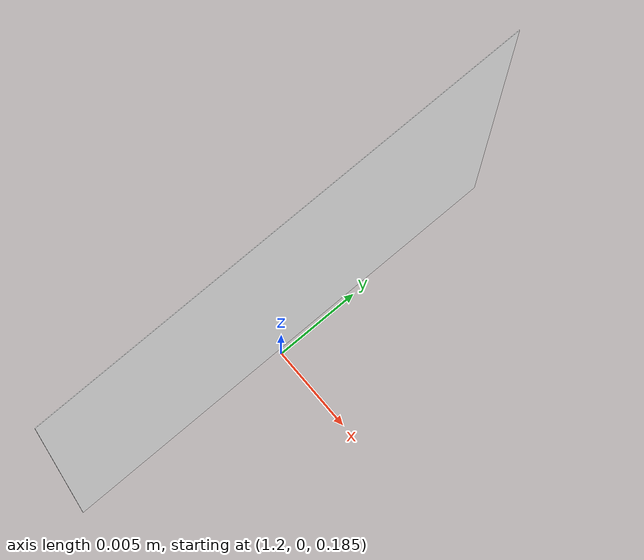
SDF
<sdf version="1.8">
 <world name="aruco_arena">
  <model name="aruco_upright_1">
   <static>true</static>
   <pose>1.2 0 0.20 0 -1.57079632679 0</pose>
   <link name="tag">
    <visual name="white_margin">
     <geometry><plane><normal>0 0 1</normal><size>0.0266666667 0.0266666667</size></plane></geometry>
     <cast_shadows>false</cast_shadows>
     <material><ambient>1 1 1 1</ambient><diffuse>1 1 1 1</diffuse><specular>0 0 0 1</specular></material>
    </visual>
    <visual name="black_0_0">
     <pose>-0.0083333333 0.0083333333 1e-05 0 0 0</pose>
     <geometry><plane><normal>0 0 1</normal><size>0.0033333333 0.0033333333</size></plane></geometry>
     <cast_shadows>false</cast_shadows>
     <material><ambient>0 0 0 1</ambient><diffuse>0 0 0 1</diffuse><specular>0 0 0 1</specular></material>
    </visual>
    <visual name="black_0_1">
     <pose>-0.0050000000 0.0083333333 1e-05 0 0 0</pose>
     <geometry><plane><normal>0 0 1</normal><size>0.0033333333 0.0033333333</size></plane></geometry>
     <cast_shadows>false</cast_shadows>
     <material><ambient>0 0 0 1</ambient><diffuse>0 0 0 1</diffuse><specular>0 0 0 1</specular></material>
    </visual>
    <visual name="black_0_2">
     <pose>-0.0016666667 0.0083333333 1e-05 0 0 0</pose>
     <geometry><plane><normal>0 0 1</normal><size>0.0033333333 0.0033333333</size></plane></geometry>
     <cast_shadows>false</cast_shadows>
     <material><ambient>0 0 0 1</ambient><diffuse>0 0 0 1</diffuse><specular>0 0 0 1</specular></material>
    </visual>
    <visual name="black_0_3">
     <pose>0.0016666667 0.0083333333 1e-05 0 0 0</pose>
     <geometry><plane><normal>0 0 1</normal><size>0.0033333333 0.0033333333</size></plane></geometry>
     <cast_shadows>false</cast_shadows>
     <material><ambient>0 0 0 1</ambient><diffuse>0 0 0 1</diffuse><specular>0 0 0 1</specular></material>
    </visual>
    <visual name="black_0_4">
     <pose>0.0050000000 0.0083333333 1e-05 0 0 0</pose>
     <geometry><plane><normal>0 0 1</normal><size>0.0033333333 0.0033333333</size></plane></geometry>
     <cast_shadows>false</cast_shadows>
     <material><ambient>0 0 0 1</ambient><diffuse>0 0 0 1</diffuse><specular>0 0 0 1</specular></material>
    </visual>
    <visual name="black_0_5">
     <pose>0.0083333333 0.0083333333 1e-05 0 0 0</pose>
     <geometry><plane><normal>0 0 1</normal><size>0.0033333333 0.0033333333</size></plane></geometry>
     <cast_shadows>false</cast_shadows>
     <material><ambient>0 0 0 1</ambient><diffuse>0 0 0 1</diffuse><specular>0 0 0 1</specular></material>
    </visual>
    <visual name="black_1_0">
     <pose>-0.0083333333 0.0050000000 1e-05 0 0 0</pose>
     <geometry><plane><normal>0 0 1</normal><size>0.0033333333 0.0033333333</size></plane></geometry>
     <cast_shadows>false</cast_shadows>
     <material><ambient>0 0 0 1</ambient><diffuse>0 0 0 1</diffuse><specular>0 0 0 1</specular></material>
    </visual>
    <visual name="black_1_1">
     <pose>-0.0050000000 0.0050000000 1e-05 0 0 0</pose>
     <geometry><plane><normal>0 0 1</normal><size>0.0033333333 0.0033333333</size></plane></geometry>
     <cast_shadows>false</cast_shadows>
     <material><ambient>0 0 0 1</ambient><diffuse>0 0 0 1</diffuse><specular>0 0 0 1</specular></material>
    </visual>
    <visual name="black_1_2">
     <pose>-0.0016666667 0.0050000000 1e-05 0 0 0</pose>
     <geometry><plane><normal>0 0 1</normal><size>0.0033333333 0.0033333333</size></plane></geometry>
     <cast_shadows>false</cast_shadows>
     <material><ambient>0 0 0 1</ambient><diffuse>0 0 0 1</diffuse><specular>0 0 0 1</specular></material>
    </visual>
    <visual name="black_1_3">
     <pose>0.0016666667 0.0050000000 1e-05 0 0 0</pose>
     <geometry><plane><normal>0 0 1</normal><size>0.0033333333 0.0033333333</size></plane></geometry>
     <cast_shadows>false</cast_shadows>
     <material><ambient>0 0 0 1</ambient><diffuse>0 0 0 1</diffuse><specular>0 0 0 1</specular></material>
    </visual>
    <visual name="black_1_4">
     <pose>0.0050000000 0.0050000000 1e-05 0 0 0</pose>
     <geometry><plane><normal>0 0 1</normal><size>0.0033333333 0.0033333333</size></plane></geometry>
     <cast_shadows>false</cast_shadows>
     <material><ambient>0 0 0 1</ambient><diffuse>0 0 0 1</diffuse><specular>0 0 0 1</specular></material>
    </visual>
    <visual name="black_1_5">
     <pose>0.0083333333 0.0050000000 1e-05 0 0 0</pose>
     <geometry><plane><normal>0 0 1</normal><size>0.0033333333 0.0033333333</size></plane></geometry>
     <cast_shadows>false</cast_shadows>
     <material><ambient>0 0 0 1</ambient><diffuse>0 0 0 1</diffuse><specular>0 0 0 1</specular></material>
    </visual>
    <visual name="black_2_0">
     <pose>-0.0083333333 0.0016666667 1e-05 0 0 0</pose>
     <geometry><plane><normal>0 0 1</normal><size>0.0033333333 0.0033333333</size></plane></geometry>
     <cast_shadows>false</cast_shadows>
     <material><ambient>0 0 0 1</ambient><diffuse>0 0 0 1</diffuse><specular>0 0 0 1</specular></material>
    </visual>
    <visual name="black_2_5">
     <pose>0.0083333333 0.0016666667 1e-05 0 0 0</pose>
     <geometry><plane><normal>0 0 1</normal><size>0.0033333333 0.0033333333</size></plane></geometry>
     <cast_shadows>false</cast_shadows>
     <material><ambient>0 0 0 1</ambient><diffuse>0 0 0 1</diffuse><specular>0 0 0 1</specular></material>
    </visual>
    <visual name="black_3_0">
     <pose>-0.0083333333 -0.0016666667 1e-05 0 0 0</pose>
     <geometry><plane><normal>0 0 1</normal><size>0.0033333333 0.0033333333</size></plane></geometry>
     <cast_shadows>false</cast_shadows>
     <material><ambient>0 0 0 1</ambient><diffuse>0 0 0 1</diffuse><specular>0 0 0 1</specular></material>
    </visual>
    <visual name="black_3_2">
     <pose>-0.0016666667 -0.0016666667 1e-05 0 0 0</pose>
     <geometry><plane><normal>0 0 1</normal><size>0.0033333333 0.0033333333</size></plane></geometry>
     <cast_shadows>false</cast_shadows>
     <material><ambient>0 0 0 1</ambient><diffuse>0 0 0 1</diffuse><specular>0 0 0 1</specular></material>
    </visual>
    <visual name="black_3_3">
     <pose>0.0016666667 -0.0016666667 1e-05 0 0 0</pose>
     <geometry><plane><normal>0 0 1</normal><size>0.0033333333 0.0033333333</size></plane></geometry>
     <cast_shadows>false</cast_shadows>
     <material><ambient>0 0 0 1</ambient><diffuse>0 0 0 1</diffuse><specular>0 0 0 1</specular></material>
    </visual>
    <visual name="black_3_5">
     <pose>0.0083333333 -0.0016666667 1e-05 0 0 0</pose>
     <geometry><plane><normal>0 0 1</normal><size>0.0033333333 0.0033333333</size></plane></geometry>
     <cast_shadows>false</cast_shadows>
     <material><ambient>0 0 0 1</ambient><diffuse>0 0 0 1</diffuse><specular>0 0 0 1</specular></material>
    </visual>
    <visual name="black_4_0">
     <pose>-0.0083333333 -0.0050000000 1e-05 0 0 0</pose>
     <geometry><plane><normal>0 0 1</normal><size>0.0033333333 0.0033333333</size></plane></geometry>
     <cast_shadows>false</cast_shadows>
     <material><ambient>0 0 0 1</ambient><diffuse>0 0 0 1</diffuse><specular>0 0 0 1</specular></material>
    </visual>
    <visual name="black_4_2">
     <pose>-0.0016666667 -0.0050000000 1e-05 0 0 0</pose>
     <geometry><plane><normal>0 0 1</normal><size>0.0033333333 0.0033333333</size></plane></geometry>
     <cast_shadows>false</cast_shadows>
     <material><ambient>0 0 0 1</ambient><diffuse>0 0 0 1</diffuse><specular>0 0 0 1</specular></material>
    </visual>
    <visual name="black_4_4">
     <pose>0.0050000000 -0.0050000000 1e-05 0 0 0</pose>
     <geometry><plane><normal>0 0 1</normal><size>0.0033333333 0.0033333333</size></plane></geometry>
     <cast_shadows>false</cast_shadows>
     <material><ambient>0 0 0 1</ambient><diffuse>0 0 0 1</diffuse><specular>0 0 0 1</specular></material>
    </visual>
    <visual name="black_4_5">
     <pose>0.0083333333 -0.0050000000 1e-05 0 0 0</pose>
     <geometry><plane><normal>0 0 1</normal><size>0.0033333333 0.0033333333</size></plane></geometry>
     <cast_shadows>false</cast_shadows>
     <material><ambient>0 0 0 1</ambient><diffuse>0 0 0 1</diffuse><specular>0 0 0 1</specular></material>
    </visual>
    <visual name="black_5_0">
     <pose>-0.0083333333 -0.0083333333 1e-05 0 0 0</pose>
     <geometry><plane><normal>0 0 1</normal><size>0.0033333333 0.0033333333</size></plane></geometry>
     <cast_shadows>false</cast_shadows>
     <material><ambient>0 0 0 1</ambient><diffuse>0 0 0 1</diffuse><specular>0 0 0 1</specular></material>
    </visual>
    <visual name="black_5_1">
     <pose>-0.0050000000 -0.0083333333 1e-05 0 0 0</pose>
     <geometry><plane><normal>0 0 1</normal><size>0.0033333333 0.0033333333</size></plane></geometry>
     <cast_shadows>false</cast_shadows>
     <material><ambient>0 0 0 1</ambient><diffuse>0 0 0 1</diffuse><specular>0 0 0 1</specular></material>
    </visual>
    <visual name="black_5_2">
     <pose>-0.0016666667 -0.0083333333 1e-05 0 0 0</pose>
     <geometry><plane><normal>0 0 1</normal><size>0.0033333333 0.0033333333</size></plane></geometry>
     <cast_shadows>false</cast_shadows>
     <material><ambient>0 0 0 1</ambient><diffuse>0 0 0 1</diffuse><specular>0 0 0 1</specular></material>
    </visual>
    <visual name="black_5_3">
     <pose>0.0016666667 -0.0083333333 1e-05 0 0 0</pose>
     <geometry><plane><normal>0 0 1</normal><size>0.0033333333 0.0033333333</size></plane></geometry>
     <cast_shadows>false</cast_shadows>
     <material><ambient>0 0 0 1</ambient><diffuse>0 0 0 1</diffuse><specular>0 0 0 1</specular></material>
    </visual>
    <visual name="black_5_4">
     <pose>0.0050000000 -0.0083333333 1e-05 0 0 0</pose>
     <geometry><plane><normal>0 0 1</normal><size>0.0033333333 0.0033333333</size></plane></geometry>
     <cast_shadows>false</cast_shadows>
     <material><ambient>0 0 0 1</ambient><diffuse>0 0 0 1</diffuse><specular>0 0 0 1</specular></material>
    </visual>
    <visual name="black_5_5">
     <pose>0.0083333333 -0.0083333333 1e-05 0 0 0</pose>
     <geometry><plane><normal>0 0 1</normal><size>0.0033333333 0.0033333333</size></plane></geometry>
     <cast_shadows>false</cast_shadows>
     <material><ambient>0 0 0 1</ambient><diffuse>0 0 0 1</diffuse><specular>0 0 0 1</specular></material>
    </visual>
   </link>
  </model>
  <model name="ground_plane">
   <static>true</static>
   <link name="ground">
    <collision name="collision">
     <geometry><plane><normal>0 0 1</normal><size>100 100</size></plane></geometry>
    </collision>
    <visual name="visual">
     <geometry><plane><normal>0 0 1</normal><size>100 100</size></plane></geometry>
     <material><ambient>0.7 0.7 0.7 1</ambient><diffuse>0.7 0.7 0.7 1</diffuse></material>
    </visual>
   </link>
  </model>
 </world>
</sdf>
